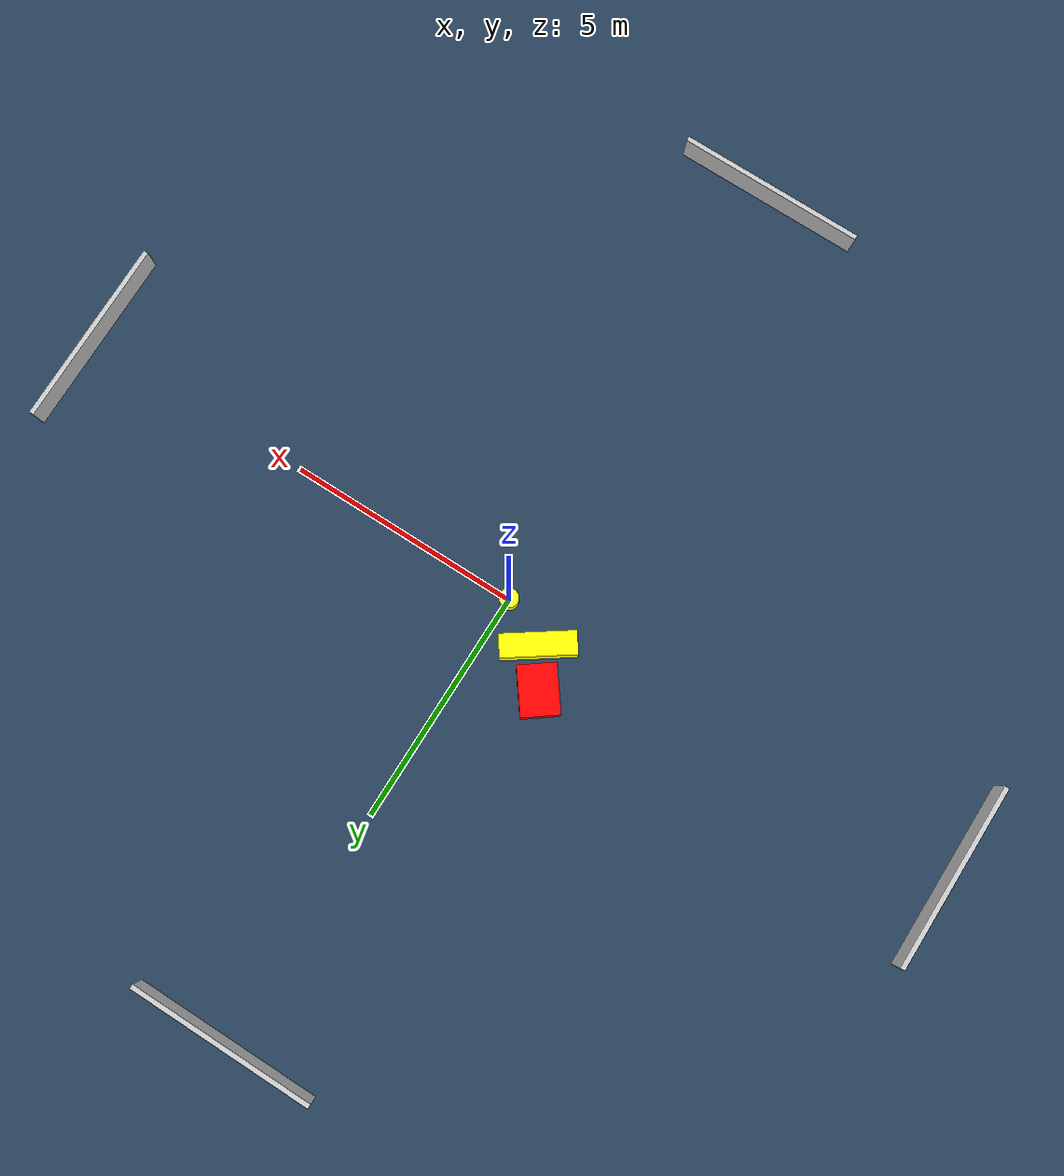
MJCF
<?xml version="1.0" ?>
<mujoco model="generated_environment">
  <option timestep="0.01" integrator="RK4" cone="elliptic"/>
  <default>
    <geom density="1"/>
  </default>
  <asset>
    <texture builtin="gradient" height="3072" name="skybox" rgb1="0.3 0.5 0.7" rgb2="0 0 0" type="skybox" width="512"/>
    <texture builtin="checker" height="300" name="groundplane" rgb1="0.2 0.3 0.4" rgb2="0.1 0.2 0.3" type="2d" width="300"/>
    <material name="groundplane" reflectance="0.2" texrepeat="5 5" texture="groundplane"/>
  </asset>
  <worldbody>
    <light dir="0 0 -1" directional="true" pos="0 0 1.5"/>
    <geom condim="3" friction="0.5 0.005 0.001" material="groundplane" name="floor" pos="0 0 0" size="0 0 0.05" type="plane"/>
    <body name="walls">
      <geom name="wall_1" condim="4" pos="-10.0 0.0 0.3" rgba="0.800000011920929 0.800000011920929 0.800000011920929 1.0" size="0.05 2.0 0.3" type="box"/>
      <geom name="wall_2" condim="4" pos="10.0 0.0 0.3" rgba="0.800000011920929 0.800000011920929 0.800000011920929 1.0" size="0.05 2.0 0.3" type="box"/>
      <geom name="wall_3" condim="4" pos="0.0 -10.0 0.3" rgba="0.800000011920929 0.800000011920929 0.800000011920929 1.0" size="2.0 0.05 0.3" type="box"/>
      <geom name="wall_4" condim="4" pos="0.0 10.0 0.3" rgba="0.800000011920929 0.800000011920929 0.800000011920929 1.0" size="2.0 0.05 0.3" type="box"/>
    </body>
    <body name="robot">
      <joint name="joint_x" type="slide" pos="0 0 0" axis="1 0 0"/>
      <joint name="joint_y" type="slide" pos="0 0 0" axis="0 1 0"/>
      <geom name="robot" type="cylinder" pos="0.0 0.0 0.2" size="0.2 0.2 0.0" mass="5.0" friction="1.0 0.005 0.0001" condim="4" rgba="1.0 1.0 0.0 1.0"/>
    </body>
    <body name="obstacle_1_movable">
      <geom name="obstacle_1_movable" condim="4" pos="-0.9780475158602983 0.48162116152581247 0.3" euler="0 0 305.00641641865406" friction="0.0 0.005 0.001" rgba="1.0 1.0 0.0 1.0" size="0.2406495027924221 0.7710408383573939 0.3" type="box" mass="0.1"/>
      <joint type="free"/>
    </body>
    <body name="obstacle_2_static">
      <geom name="obstacle_2_static" condim="4" pos="-1.459473024420783 1.230246444026827 0.3" euler="0 0 306.6489509544483" friction="0.0 0.005 0.001" rgba="1.0 0.0 0.0 1.0" size="0.5137830429246752 0.3971971313621219 0.3" type="box"/>
    </body>
  </worldbody>
  <actuator>
    <motor name="actuator_x" joint="joint_x" gear="1" ctrlrange="-1 1"/>
    <motor name="actuator_y" joint="joint_y" gear="1" ctrlrange="-1 1"/>
  </actuator>
</mujoco>
